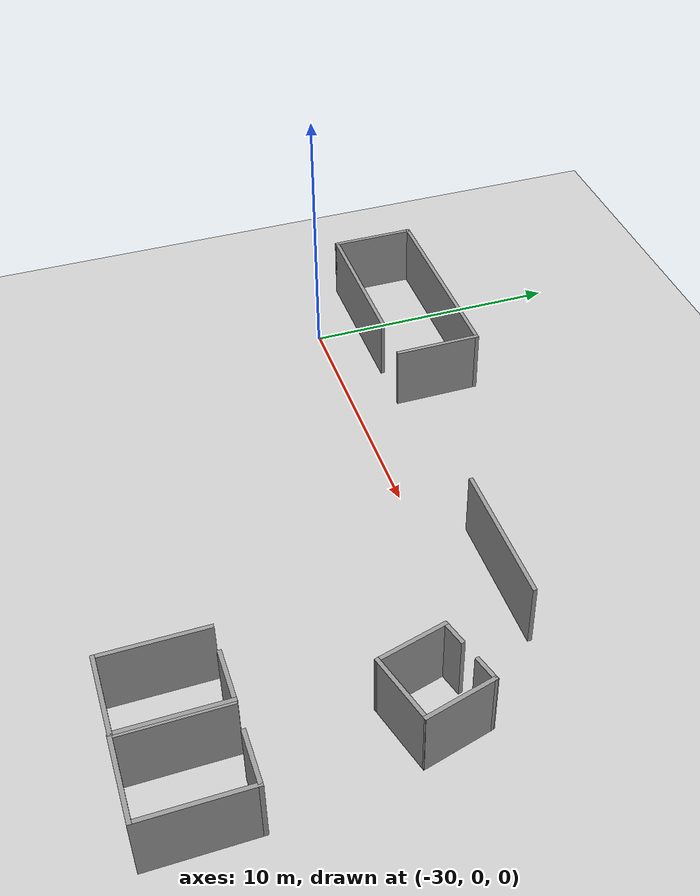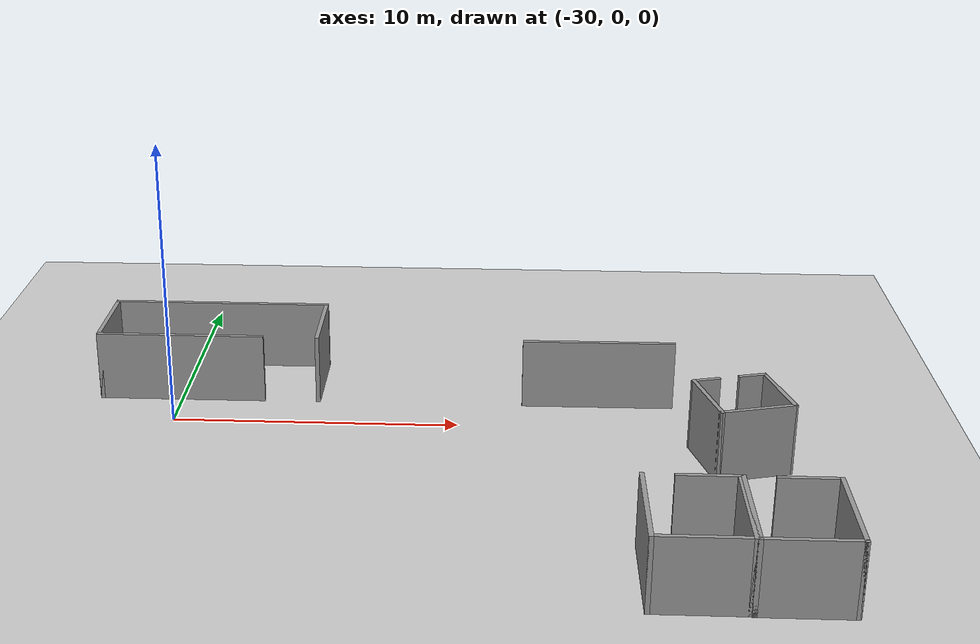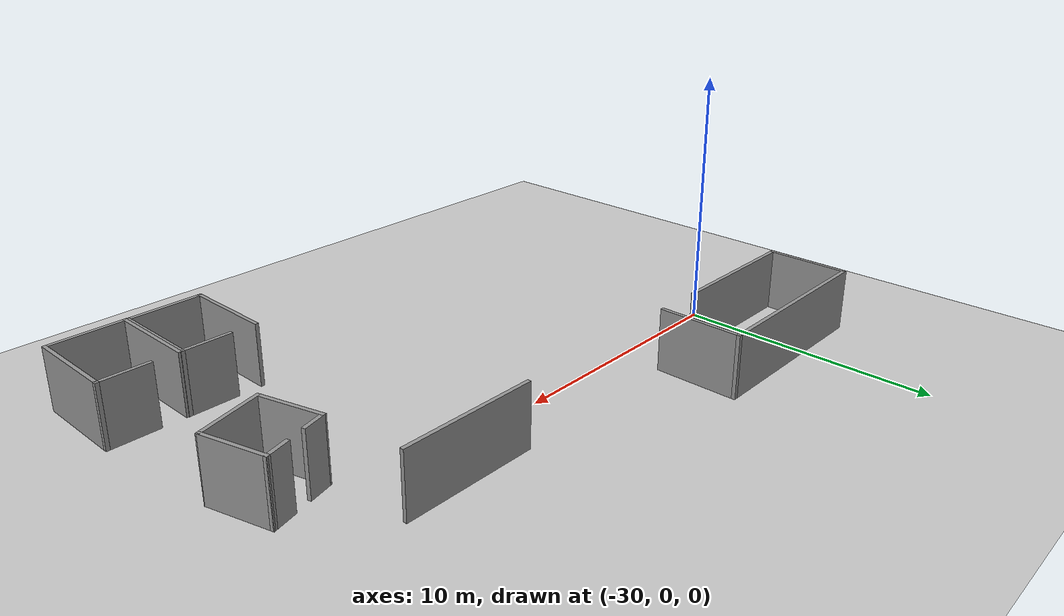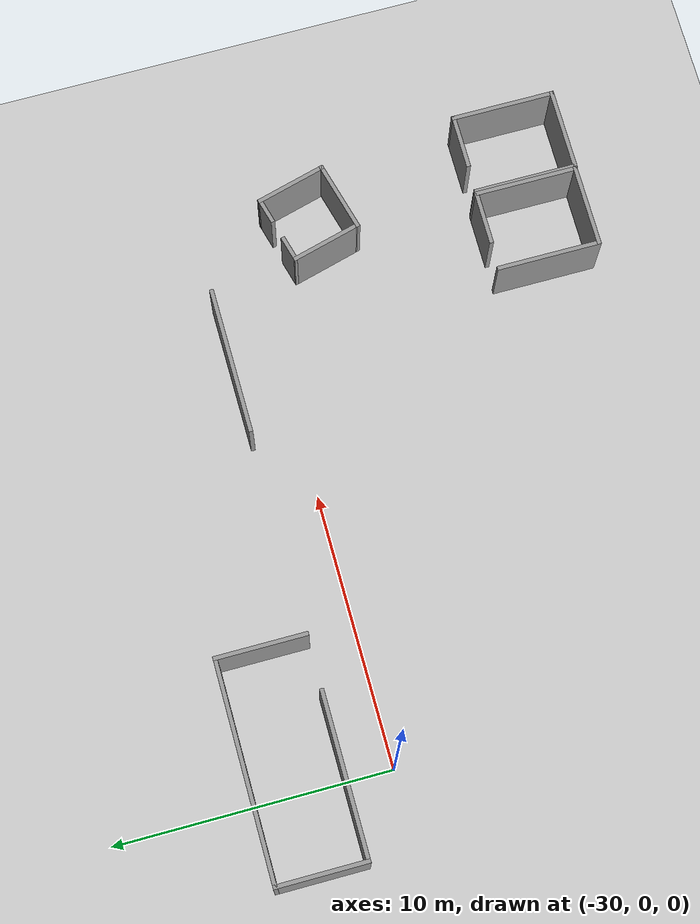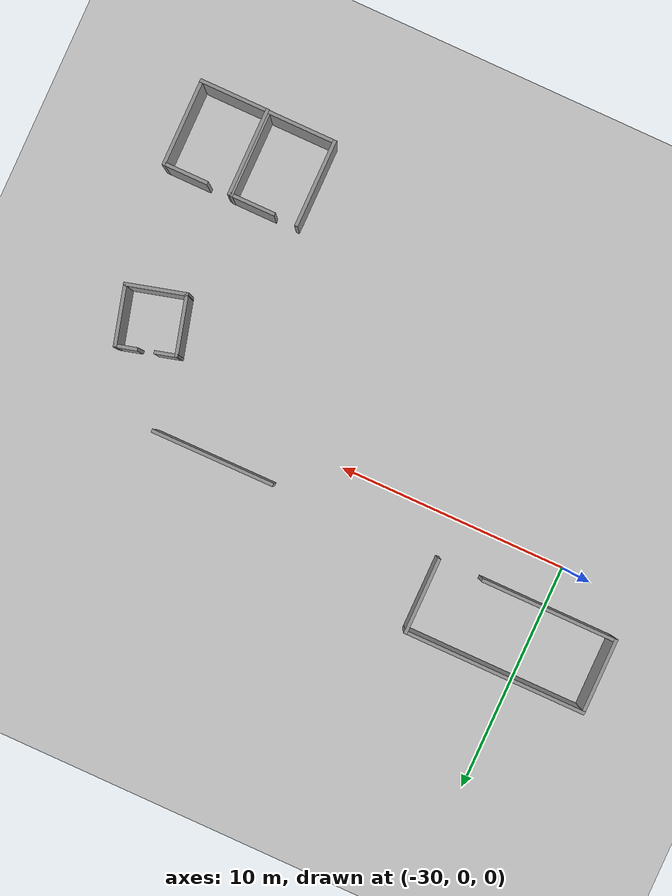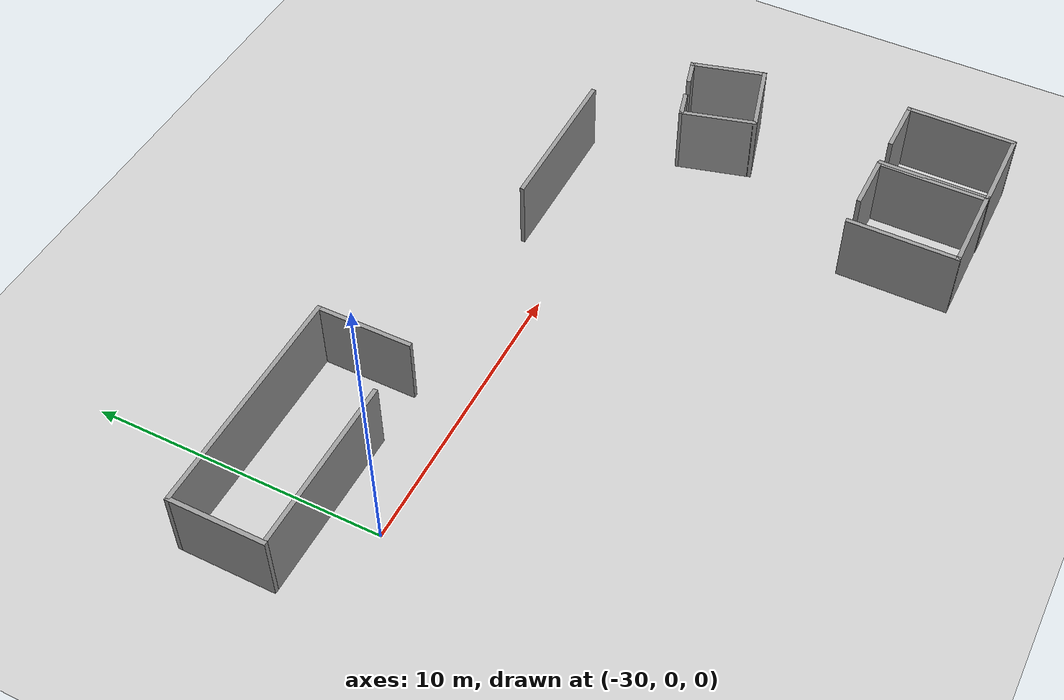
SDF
<sdf version="1.6">
 <world name="default">
  <model name="ground_plane">
   <static>1</static>
   <link name="link">
    <collision name="collision">
     <geometry><plane><normal>0 0 1</normal><size>100 100</size></plane></geometry>
     <surface><friction><ode><mu>100</mu><mu2>50</mu2></ode></friction></surface>
    </collision>
    <visual name="visual">
     <cast_shadows>0</cast_shadows>
     <geometry><plane><normal>0 0 1</normal><size>100 100</size></plane></geometry>
     <material>
      <script><uri>file://media/materials/scripts/gazebo.material</uri><name>Gazebo/Grey</name></script>
     </material>
    </visual>
   </link>
  </model>
  <model name="4m_wall_0">
   <link name="Wall_0">
    <pose>0 0 0 0 0 -3.13659</pose>
    <inertial>
     <inertia><ixx>0</ixx><ixy>0</ixy><ixz>0</ixz><iyy>0</iyy><iyz>0</iyz><izz>0</izz></inertia>
     <mass>0</mass>
    </inertial>
    <visual name="Wall_0_Visual">
     <pose>0 0 1.25 0 -0 0</pose>
     <geometry><box><size>5.37435 0.15 2.5</size></box></geometry>
     <material>
      <script><uri>file://media/materials/scripts/gazebo.material</uri><name>Gazebo/Grey</name></script>
      <ambient>1 1 1 1</ambient>
      <shader type="pixel"/>
     </material>
     <meta><layer>0</layer></meta>
    </visual>
    <collision name="Wall_0_Collision">
     <pose>0 0 1.25 0 -0 0</pose>
     <geometry><box><size>5.37435 0.15 2.5</size></box></geometry>
     <surface>
      <friction>
       <ode><mu>1</mu><mu2>1</mu2><fdir1>0 0 0</fdir1><slip1>0</slip1><slip2>0</slip2></ode>
       <torsional>
        <coefficient>1</coefficient>
        <patch_radius>0</patch_radius>
        <surface_radius>0</surface_radius>
        <use_patch_radius>1</use_patch_radius>
        <ode><slip>0</slip></ode>
       </torsional>
      </friction>
      <bounce><restitution_coefficient>0</restitution_coefficient><threshold>1e+06</threshold></bounce>
      <contact>
       <collide_without_contact>0</collide_without_contact>
       <collide_without_contact_bitmask>1</collide_without_contact_bitmask>
       <collide_bitmask>1</collide_bitmask>
       <ode>
        <soft_cfm>0</soft_cfm>
        <soft_erp>0.2</soft_erp>
        <kp>1e+13</kp>
        <kd>1</kd>
        <max_vel>0.01</max_vel>
        <min_depth>0</min_depth>
       </ode>
       <bullet>
        <split_impulse>1</split_impulse>
        <split_impulse_penetration_threshold>-0.01</split_impulse_penetration_threshold>
        <soft_cfm>0</soft_cfm>
        <soft_erp>0.2</soft_erp>
        <kp>1e+13</kp>
        <kd>1</kd>
       </bullet>
      </contact>
     </surface>
    </collision>
   </link>
   <static>1</static>
   <pose>-15.0556 1.78398 0 0 -0 0</pose>
  </model>
  <model name="329_10">
   <pose>-9.81777 -10.0378 0 0 -0 0</pose>
   <link name="Wall_0">
    <collision name="Wall_0_Collision">
     <geometry><box><size>3.81 0.15 2.5</size></box></geometry>
     <pose>0 0 1.25 0 -0 0</pose>
    </collision>
    <visual name="Wall_0_Visual">
     <pose>0 0 1.25 0 -0 0</pose>
     <geometry><box><size>3.81 0.15 2.5</size></box></geometry>
     <material>
      <script><uri>file://media/materials/scripts/gazebo.material</uri><name>Gazebo/Grey</name></script>
      <ambient>1 1 1 1</ambient>
     </material>
     <meta><layer>0</layer></meta>
    </visual>
    <pose>-1.449 0 0 0 -0 -1.5708</pose>
   </link>
   <link name="Wall_1">
    <collision name="Wall_1_Collision">
     <geometry><box><size>3.048 0.15 2.5</size></box></geometry>
     <pose>0 0 1.25 0 -0 0</pose>
    </collision>
    <visual name="Wall_1_Visual">
     <pose>0 0 1.25 0 -0 0</pose>
     <geometry><box><size>3.048 0.15 2.5</size></box></geometry>
     <material>
      <script><uri>file://media/materials/scripts/gazebo.material</uri><name>Gazebo/Grey</name></script>
      <ambient>1 1 1 1</ambient>
     </material>
     <meta><layer>0</layer></meta>
    </visual>
    <pose>-0 -1.83 0 0 -0 0</pose>
   </link>
   <link name="Wall_2">
    <collision name="Wall_2_Collision">
     <geometry><box><size>3.81 0.15 2.5</size></box></geometry>
     <pose>0 0 1.25 0 -0 0</pose>
    </collision>
    <visual name="Wall_2_Visual">
     <pose>0 0 1.25 0 -0 0</pose>
     <geometry><box><size>3.81 0.15 2.5</size></box></geometry>
     <material>
      <script><uri>file://media/materials/scripts/gazebo.material</uri><name>Gazebo/Grey</name></script>
      <ambient>1 1 1 1</ambient>
     </material>
     <meta><layer>0</layer></meta>
    </visual>
    <pose>1.449 0 0 0 -0 1.5708</pose>
   </link>
   <link name="Wall_5">
    <collision name="Wall_5_Collision">
     <geometry><box><size>2 0.15 2.5</size></box></geometry>
     <pose>0 0 1.25 0 -0 0</pose>
    </collision>
    <visual name="Wall_5_Visual">
     <pose>0 0 1.25 0 -0 0</pose>
     <geometry><box><size>2 0.15 2.5</size></box></geometry>
     <material>
      <script><uri>file://media/materials/scripts/gazebo.material</uri><name>Gazebo/Grey</name></script>
      <ambient>1 1 1 1</ambient>
     </material>
     <meta><layer>0</layer></meta>
    </visual>
    <pose>0.524 1.83 0 0 -0 3.14159</pose>
   </link>
   <static>1</static>
  </model>
  <model name="329_11">
   <pose>-12.8097 -10.0153 0 0 -0 0</pose>
   <link name="Wall_0">
    <collision name="Wall_0_Collision">
     <geometry><box><size>3.81 0.15 2.5</size></box></geometry>
     <pose>0 0 1.25 0 -0 0</pose>
    </collision>
    <visual name="Wall_0_Visual">
     <pose>0 0 1.25 0 -0 0</pose>
     <geometry><box><size>3.81 0.15 2.5</size></box></geometry>
     <material>
      <script><uri>file://media/materials/scripts/gazebo.material</uri><name>Gazebo/Grey</name></script>
      <ambient>1 1 1 1</ambient>
     </material>
     <meta><layer>0</layer></meta>
    </visual>
    <pose>-1.449 0 0 0 -0 -1.5708</pose>
   </link>
   <link name="Wall_1">
    <collision name="Wall_1_Collision">
     <geometry><box><size>3.048 0.15 2.5</size></box></geometry>
     <pose>0 0 1.25 0 -0 0</pose>
    </collision>
    <visual name="Wall_1_Visual">
     <pose>0 0 1.25 0 -0 0</pose>
     <geometry><box><size>3.048 0.15 2.5</size></box></geometry>
     <material>
      <script><uri>file://media/materials/scripts/gazebo.material</uri><name>Gazebo/Grey</name></script>
      <ambient>1 1 1 1</ambient>
     </material>
     <meta><layer>0</layer></meta>
    </visual>
    <pose>-0 -1.83 0 0 -0 0</pose>
   </link>
   <link name="Wall_2">
    <collision name="Wall_2_Collision">
     <geometry><box><size>3.81 0.15 2.5</size></box></geometry>
     <pose>0 0 1.25 0 -0 0</pose>
    </collision>
    <visual name="Wall_2_Visual">
     <pose>0 0 1.25 0 -0 0</pose>
     <geometry><box><size>3.81 0.15 2.5</size></box></geometry>
     <material>
      <script><uri>file://media/materials/scripts/gazebo.material</uri><name>Gazebo/Grey</name></script>
      <ambient>1 1 1 1</ambient>
     </material>
     <meta><layer>0</layer></meta>
    </visual>
    <pose>1.449 0 0 0 -0 1.5708</pose>
   </link>
   <link name="Wall_5">
    <collision name="Wall_5_Collision">
     <geometry><box><size>2 0.15 2.5</size></box></geometry>
     <pose>0 0 1.25 0 -0 0</pose>
    </collision>
    <visual name="Wall_5_Visual">
     <pose>0 0 1.25 0 -0 0</pose>
     <geometry><box><size>2 0.15 2.5</size></box></geometry>
     <material>
      <script><uri>file://media/materials/scripts/gazebo.material</uri><name>Gazebo/Grey</name></script>
      <ambient>1 1 1 1</ambient>
     </material>
     <meta><layer>0</layer></meta>
    </visual>
    <pose>0.524 1.83 0 0 -0 3.14159</pose>
   </link>
   <static>1</static>
  </model>
  <model name="195_1">
   <link name="Wall_52">
    <pose>-0.000138 -1.2585 0 0 -0 0</pose>
    <visual name="Wall_52_Visual">
     <pose>0 0 1.25 0 -0 0</pose>
     <geometry><box><size>2.667 0.15 2.5</size></box></geometry>
     <material>
      <script><uri>file://media/materials/scripts/gazebo.material</uri><name>Gazebo/Grey</name></script>
      <ambient>1 1 1 1</ambient>
      <shader type="pixel"/>
     </material>
     <meta><layer>0</layer></meta>
    </visual>
    <collision name="Wall_52_Collision">
     <pose>0 0 1.25 0 -0 0</pose>
     <geometry><box><size>2.667 0.15 2.5</size></box></geometry>
     <surface>
      <friction>
       <ode><mu>1</mu><mu2>1</mu2><fdir1>0 0 0</fdir1><slip1>0</slip1><slip2>0</slip2></ode>
       <torsional>
        <coefficient>1</coefficient>
        <patch_radius>0</patch_radius>
        <surface_radius>0</surface_radius>
        <use_patch_radius>1</use_patch_radius>
        <ode><slip>0</slip></ode>
       </torsional>
      </friction>
      <bounce><restitution_coefficient>0</restitution_coefficient><threshold>1e+06</threshold></bounce>
      <contact>
       <collide_without_contact>0</collide_without_contact>
       <collide_without_contact_bitmask>1</collide_without_contact_bitmask>
       <collide_bitmask>1</collide_bitmask>
       <ode>
        <soft_cfm>0</soft_cfm>
        <soft_erp>0.2</soft_erp>
        <kp>1e+13</kp>
        <kd>1</kd>
        <max_vel>0.01</max_vel>
        <min_depth>0</min_depth>
       </ode>
       <bullet>
        <split_impulse>1</split_impulse>
        <split_impulse_penetration_threshold>-0.01</split_impulse_penetration_threshold>
        <soft_cfm>0</soft_cfm>
        <soft_erp>0.2</soft_erp>
        <kp>1e+13</kp>
        <kd>1</kd>
       </bullet>
      </contact>
     </surface>
    </collision>
   </link>
   <link name="Wall_53">
    <pose>1.2585 -0 0 0 -0 1.57069</pose>
    <visual name="Wall_53_Visual">
     <pose>0 0 1.25 0 -0 0</pose>
     <geometry><box><size>2.667 0.15 2.5</size></box></geometry>
     <material>
      <script><uri>file://media/materials/scripts/gazebo.material</uri><name>Gazebo/Grey</name></script>
      <ambient>1 1 1 1</ambient>
      <shader type="pixel"/>
     </material>
     <meta><layer>0</layer></meta>
    </visual>
    <collision name="Wall_53_Collision">
     <pose>0 0 1.25 0 -0 0</pose>
     <geometry><box><size>2.667 0.15 2.5</size></box></geometry>
     <surface>
      <friction>
       <ode><mu>1</mu><mu2>1</mu2><fdir1>0 0 0</fdir1><slip1>0</slip1><slip2>0</slip2></ode>
       <torsional>
        <coefficient>1</coefficient>
        <patch_radius>0</patch_radius>
        <surface_radius>0</surface_radius>
        <use_patch_radius>1</use_patch_radius>
        <ode><slip>0</slip></ode>
       </torsional>
      </friction>
      <bounce><restitution_coefficient>0</restitution_coefficient><threshold>1e+06</threshold></bounce>
      <contact>
       <collide_without_contact>0</collide_without_contact>
       <collide_without_contact_bitmask>1</collide_without_contact_bitmask>
       <collide_bitmask>1</collide_bitmask>
       <ode>
        <soft_cfm>0</soft_cfm>
        <soft_erp>0.2</soft_erp>
        <kp>1e+13</kp>
        <kd>1</kd>
        <max_vel>0.01</max_vel>
        <min_depth>0</min_depth>
       </ode>
       <bullet>
        <split_impulse>1</split_impulse>
        <split_impulse_penetration_threshold>-0.01</split_impulse_penetration_threshold>
        <soft_cfm>0</soft_cfm>
        <soft_erp>0.2</soft_erp>
        <kp>1e+13</kp>
        <kd>1</kd>
       </bullet>
      </contact>
     </surface>
    </collision>
   </link>
   <link name="Wall_55">
    <pose>-1.2585 0 0 0 0 -1.57091</pose>
    <visual name="Wall_55_Visual">
     <pose>0 0 1.25 0 -0 0</pose>
     <geometry><box><size>2.667 0.15 2.5</size></box></geometry>
     <material>
      <script><uri>file://media/materials/scripts/gazebo.material</uri><name>Gazebo/Grey</name></script>
      <ambient>1 1 1 1</ambient>
      <shader type="pixel"/>
     </material>
     <meta><layer>0</layer></meta>
    </visual>
    <collision name="Wall_55_Collision">
     <pose>0 0 1.25 0 -0 0</pose>
     <geometry><box><size>2.667 0.15 2.5</size></box></geometry>
     <surface>
      <friction>
       <ode><mu>1</mu><mu2>1</mu2><fdir1>0 0 0</fdir1><slip1>0</slip1><slip2>0</slip2></ode>
       <torsional>
        <coefficient>1</coefficient>
        <patch_radius>0</patch_radius>
        <surface_radius>0</surface_radius>
        <use_patch_radius>1</use_patch_radius>
        <ode><slip>0</slip></ode>
       </torsional>
      </friction>
      <bounce><restitution_coefficient>0</restitution_coefficient><threshold>1e+06</threshold></bounce>
      <contact>
       <collide_without_contact>0</collide_without_contact>
       <collide_without_contact_bitmask>1</collide_without_contact_bitmask>
       <collide_bitmask>1</collide_bitmask>
       <ode>
        <soft_cfm>0</soft_cfm>
        <soft_erp>0.2</soft_erp>
        <kp>1e+13</kp>
        <kd>1</kd>
        <max_vel>0.01</max_vel>
        <min_depth>0</min_depth>
       </ode>
       <bullet>
        <split_impulse>1</split_impulse>
        <split_impulse_penetration_threshold>-0.01</split_impulse_penetration_threshold>
        <soft_cfm>0</soft_cfm>
        <soft_erp>0.2</soft_erp>
        <kp>1e+13</kp>
        <kd>1</kd>
       </bullet>
      </contact>
     </surface>
    </collision>
   </link>
   <link name="Wall_57">
    <pose>0.833639 1.2585 0 0 -0 3.14159</pose>
    <visual name="Wall_57_Visual">
     <pose>0 0 1.25 0 -0 0</pose>
     <geometry><box><size>1 0.15 2.5</size></box></geometry>
     <material>
      <script><uri>file://media/materials/scripts/gazebo.material</uri><name>Gazebo/Grey</name></script>
      <ambient>1 1 1 1</ambient>
      <shader type="pixel"/>
     </material>
     <meta><layer>0</layer></meta>
    </visual>
    <collision name="Wall_57_Collision">
     <pose>0 0 1.25 0 -0 0</pose>
     <geometry><box><size>1 0.15 2.5</size></box></geometry>
     <surface>
      <friction>
       <ode><mu>1</mu><mu2>1</mu2><fdir1>0 0 0</fdir1><slip1>0</slip1><slip2>0</slip2></ode>
       <torsional>
        <coefficient>1</coefficient>
        <patch_radius>0</patch_radius>
        <surface_radius>0</surface_radius>
        <use_patch_radius>1</use_patch_radius>
        <ode><slip>0</slip></ode>
       </torsional>
      </friction>
      <bounce><restitution_coefficient>0</restitution_coefficient><threshold>1e+06</threshold></bounce>
      <contact>
       <collide_without_contact>0</collide_without_contact>
       <collide_without_contact_bitmask>1</collide_without_contact_bitmask>
       <collide_bitmask>1</collide_bitmask>
       <ode>
        <soft_cfm>0</soft_cfm>
        <soft_erp>0.2</soft_erp>
        <kp>1e+13</kp>
        <kd>1</kd>
        <max_vel>0.01</max_vel>
        <min_depth>0</min_depth>
       </ode>
       <bullet>
        <split_impulse>1</split_impulse>
        <split_impulse_penetration_threshold>-0.01</split_impulse_penetration_threshold>
        <soft_cfm>0</soft_cfm>
        <soft_erp>0.2</soft_erp>
        <kp>1e+13</kp>
        <kd>1</kd>
       </bullet>
      </contact>
     </surface>
    </collision>
   </link>
   <link name="Wall_59">
    <pose>-0.833361 1.2585 0 0 -0 3.14159</pose>
    <visual name="Wall_59_Visual">
     <pose>0 0 1.25 0 -0 0</pose>
     <geometry><box><size>1 0.15 2.5</size></box></geometry>
     <material>
      <script><uri>file://media/materials/scripts/gazebo.material</uri><name>Gazebo/Grey</name></script>
      <ambient>1 1 1 1</ambient>
      <shader type="pixel"/>
     </material>
     <meta><layer>0</layer></meta>
    </visual>
    <collision name="Wall_59_Collision">
     <pose>0 0 1.25 0 -0 0</pose>
     <geometry><box><size>1 0.15 2.5</size></box></geometry>
     <surface>
      <friction>
       <ode><mu>1</mu><mu2>1</mu2><fdir1>0 0 0</fdir1><slip1>0</slip1><slip2>0</slip2></ode>
       <torsional>
        <coefficient>1</coefficient>
        <patch_radius>0</patch_radius>
        <surface_radius>0</surface_radius>
        <use_patch_radius>1</use_patch_radius>
        <ode><slip>0</slip></ode>
       </torsional>
      </friction>
      <bounce><restitution_coefficient>0</restitution_coefficient><threshold>1e+06</threshold></bounce>
      <contact>
       <collide_without_contact>0</collide_without_contact>
       <collide_without_contact_bitmask>1</collide_without_contact_bitmask>
       <collide_bitmask>1</collide_bitmask>
       <ode>
        <soft_cfm>0</soft_cfm>
        <soft_erp>0.2</soft_erp>
        <kp>1e+13</kp>
        <kd>1</kd>
        <max_vel>0.01</max_vel>
        <min_depth>0</min_depth>
       </ode>
       <bullet>
        <split_impulse>1</split_impulse>
        <split_impulse_penetration_threshold>-0.01</split_impulse_penetration_threshold>
        <soft_cfm>0</soft_cfm>
        <soft_erp>0.2</soft_erp>
        <kp>1e+13</kp>
        <kd>1</kd>
       </bullet>
      </contact>
     </surface>
    </collision>
   </link>
   <static>1</static>
   <pose>-10.4954 -2.24725 0 0 -0 0.262188</pose>
  </model>
  <model name="197A">
   <link name="Wall_33">
    <pose>3.925 0 0 0 -0 1.5708</pose>
    <visual name="Wall_33_Visual">
     <pose>0 0 1.25 0 -0 0</pose>
     <geometry><box><size>3.336 0.15 2.5</size></box></geometry>
     <material>
      <script><uri>file://media/materials/scripts/gazebo.material</uri><name>Gazebo/Grey</name></script>
      <ambient>1 1 1 1</ambient>
      <shader type="pixel"/>
     </material>
     <meta><layer>0</layer></meta>
    </visual>
    <collision name="Wall_33_Collision">
     <pose>0 0 1.25 0 -0 0</pose>
     <geometry><box><size>3.336 0.15 2.5</size></box></geometry>
     <surface>
      <friction>
       <ode><mu>1</mu><mu2>1</mu2><fdir1>0 0 0</fdir1><slip1>0</slip1><slip2>0</slip2></ode>
       <torsional>
        <coefficient>1</coefficient>
        <patch_radius>0</patch_radius>
        <surface_radius>0</surface_radius>
        <use_patch_radius>1</use_patch_radius>
        <ode><slip>0</slip></ode>
       </torsional>
      </friction>
      <bounce><restitution_coefficient>0</restitution_coefficient><threshold>1e+06</threshold></bounce>
      <contact>
       <collide_without_contact>0</collide_without_contact>
       <collide_without_contact_bitmask>1</collide_without_contact_bitmask>
       <collide_bitmask>1</collide_bitmask>
       <ode>
        <soft_cfm>0</soft_cfm>
        <soft_erp>0.2</soft_erp>
        <kp>1e+13</kp>
        <kd>1</kd>
        <max_vel>0.01</max_vel>
        <min_depth>0</min_depth>
       </ode>
       <bullet>
        <split_impulse>1</split_impulse>
        <split_impulse_penetration_threshold>-0.01</split_impulse_penetration_threshold>
        <soft_cfm>0</soft_cfm>
        <soft_erp>0.2</soft_erp>
        <kp>1e+13</kp>
        <kd>1</kd>
       </bullet>
      </contact>
     </surface>
    </collision>
   </link>
   <link name="Wall_34">
    <pose>0 1.593 0 0 -0 3.14159</pose>
    <visual name="Wall_34_Visual">
     <pose>0 0 1.25 0 -0 0</pose>
     <geometry><box><size>8 0.15 2.5</size></box></geometry>
     <material>
      <script><uri>file://media/materials/scripts/gazebo.material</uri><name>Gazebo/Grey</name></script>
      <ambient>1 1 1 1</ambient>
      <shader type="pixel"/>
     </material>
     <meta><layer>0</layer></meta>
    </visual>
    <collision name="Wall_34_Collision">
     <pose>0 0 1.25 0 -0 0</pose>
     <geometry><box><size>8 0.15 2.5</size></box></geometry>
     <surface>
      <friction>
       <ode><mu>1</mu><mu2>1</mu2><fdir1>0 0 0</fdir1><slip1>0</slip1><slip2>0</slip2></ode>
       <torsional>
        <coefficient>1</coefficient>
        <patch_radius>0</patch_radius>
        <surface_radius>0</surface_radius>
        <use_patch_radius>1</use_patch_radius>
        <ode><slip>0</slip></ode>
       </torsional>
      </friction>
      <bounce><restitution_coefficient>0</restitution_coefficient><threshold>1e+06</threshold></bounce>
      <contact>
       <collide_without_contact>0</collide_without_contact>
       <collide_without_contact_bitmask>1</collide_without_contact_bitmask>
       <collide_bitmask>1</collide_bitmask>
       <ode>
        <soft_cfm>0</soft_cfm>
        <soft_erp>0.2</soft_erp>
        <kp>1e+13</kp>
        <kd>1</kd>
        <max_vel>0.01</max_vel>
        <min_depth>0</min_depth>
       </ode>
       <bullet>
        <split_impulse>1</split_impulse>
        <split_impulse_penetration_threshold>-0.01</split_impulse_penetration_threshold>
        <soft_cfm>0</soft_cfm>
        <soft_erp>0.2</soft_erp>
        <kp>1e+13</kp>
        <kd>1</kd>
       </bullet>
      </contact>
     </surface>
    </collision>
   </link>
   <link name="Wall_35">
    <pose>-3.925 0 0 0 0 -1.5708</pose>
    <visual name="Wall_35_Visual">
     <pose>0 0 1.25 0 -0 0</pose>
     <geometry><box><size>3.336 0.15 2.5</size></box></geometry>
     <material>
      <script><uri>file://media/materials/scripts/gazebo.material</uri><name>Gazebo/Grey</name></script>
      <ambient>1 1 1 1</ambient>
      <shader type="pixel"/>
     </material>
     <meta><layer>0</layer></meta>
    </visual>
    <collision name="Wall_35_Collision">
     <pose>0 0 1.25 0 -0 0</pose>
     <geometry><box><size>3.336 0.15 2.5</size></box></geometry>
     <surface>
      <friction>
       <ode><mu>1</mu><mu2>1</mu2><fdir1>0 0 0</fdir1><slip1>0</slip1><slip2>0</slip2></ode>
       <torsional>
        <coefficient>1</coefficient>
        <patch_radius>0</patch_radius>
        <surface_radius>0</surface_radius>
        <use_patch_radius>1</use_patch_radius>
        <ode><slip>0</slip></ode>
       </torsional>
      </friction>
      <bounce><restitution_coefficient>0</restitution_coefficient><threshold>1e+06</threshold></bounce>
      <contact>
       <collide_without_contact>0</collide_without_contact>
       <collide_without_contact_bitmask>1</collide_without_contact_bitmask>
       <collide_bitmask>1</collide_bitmask>
       <ode>
        <soft_cfm>0</soft_cfm>
        <soft_erp>0.2</soft_erp>
        <kp>1e+13</kp>
        <kd>1</kd>
        <max_vel>0.01</max_vel>
        <min_depth>0</min_depth>
       </ode>
       <bullet>
        <split_impulse>1</split_impulse>
        <split_impulse_penetration_threshold>-0.01</split_impulse_penetration_threshold>
        <soft_cfm>0</soft_cfm>
        <soft_erp>0.2</soft_erp>
        <kp>1e+13</kp>
        <kd>1</kd>
       </bullet>
      </contact>
     </surface>
    </collision>
   </link>
   <link name="Wall_37">
    <pose>-1 -1.593 0 0 -0 0</pose>
    <visual name="Wall_37_Visual">
     <pose>0 0 1.25 0 -0 0</pose>
     <geometry><box><size>6 0.15 2.5</size></box></geometry>
     <material>
      <script><uri>file://media/materials/scripts/gazebo.material</uri><name>Gazebo/Grey</name></script>
      <ambient>1 1 1 1</ambient>
      <shader type="pixel"/>
     </material>
     <meta><layer>0</layer></meta>
    </visual>
    <collision name="Wall_37_Collision">
     <pose>0 0 1.25 0 -0 0</pose>
     <geometry><box><size>6 0.15 2.5</size></box></geometry>
     <surface>
      <friction>
       <ode><mu>1</mu><mu2>1</mu2><fdir1>0 0 0</fdir1><slip1>0</slip1><slip2>0</slip2></ode>
       <torsional>
        <coefficient>1</coefficient>
        <patch_radius>0</patch_radius>
        <surface_radius>0</surface_radius>
        <use_patch_radius>1</use_patch_radius>
        <ode><slip>0</slip></ode>
       </torsional>
      </friction>
      <bounce><restitution_coefficient>0</restitution_coefficient><threshold>1e+06</threshold></bounce>
      <contact>
       <collide_without_contact>0</collide_without_contact>
       <collide_without_contact_bitmask>1</collide_without_contact_bitmask>
       <collide_bitmask>1</collide_bitmask>
       <ode>
        <soft_cfm>0</soft_cfm>
        <soft_erp>0.2</soft_erp>
        <kp>1e+13</kp>
        <kd>1</kd>
        <max_vel>0.01</max_vel>
        <min_depth>0</min_depth>
       </ode>
       <bullet>
        <split_impulse>1</split_impulse>
        <split_impulse_penetration_threshold>-0.01</split_impulse_penetration_threshold>
        <soft_cfm>0</soft_cfm>
        <soft_erp>0.2</soft_erp>
        <kp>1e+13</kp>
        <kd>1</kd>
       </bullet>
      </contact>
     </surface>
    </collision>
   </link>
   <static>1</static>
   <pose>-29.0027 3.35385 0 0 -0 0</pose>
  </model>
 </world>
</sdf>
